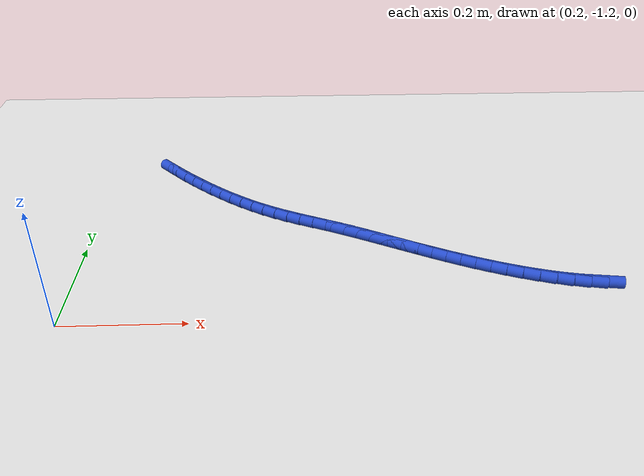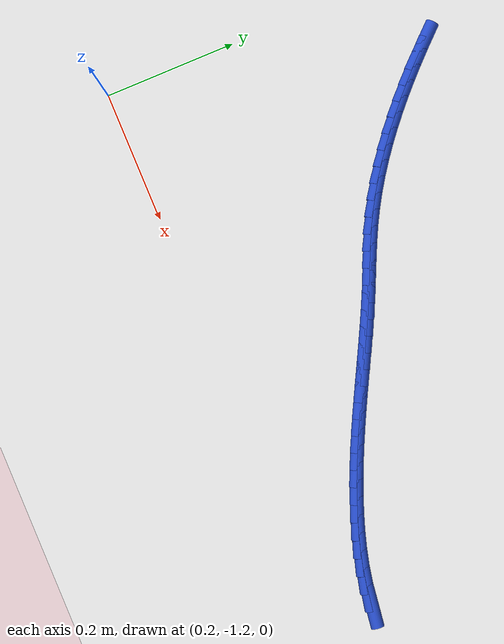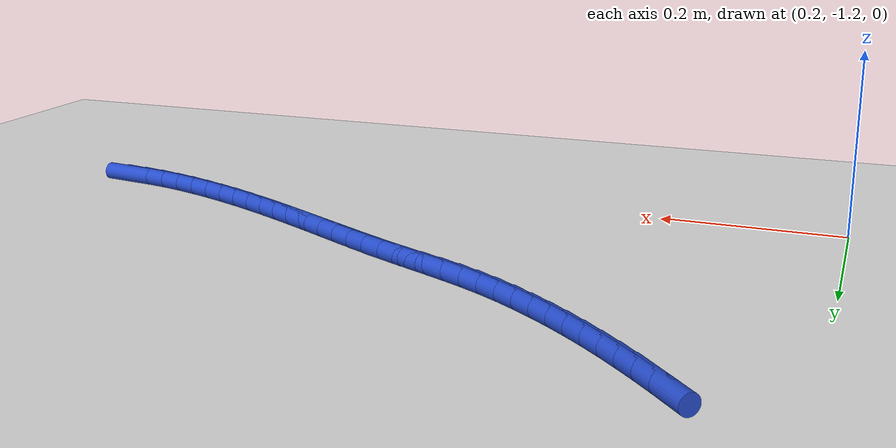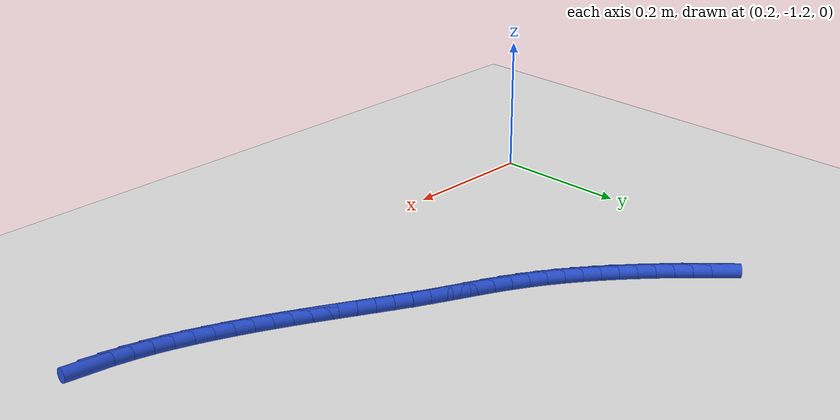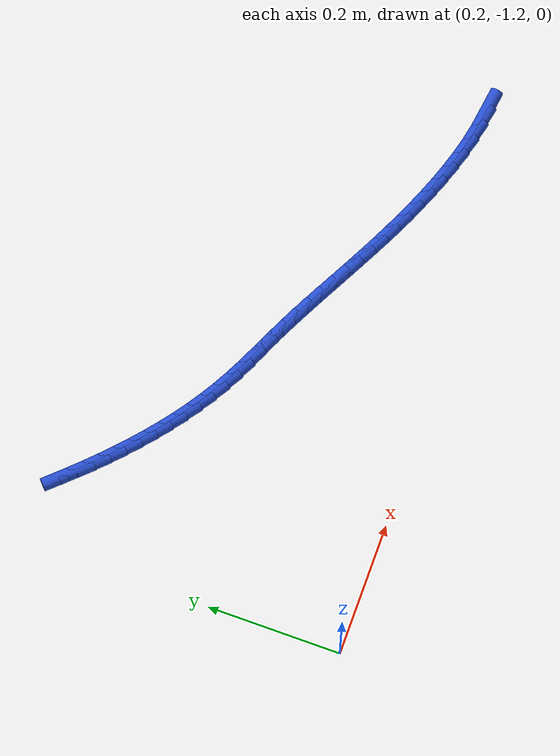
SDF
<sdf version="1.6">
 <world name="default">
  <model name="ground_plane">
   <static>1</static>
   <link name="link">
    <collision name="collision">
     <geometry><plane><normal>0 0 1</normal><size>100 100</size></plane></geometry>
     <surface><friction><ode><mu>100</mu><mu2>50</mu2></ode></friction></surface>
    </collision>
    <visual name="visual">
     <cast_shadows>0</cast_shadows>
     <geometry><plane><normal>0 0 1</normal><size>100 100</size></plane></geometry>
     <material>
      <script><uri>file://media/materials/scripts/gazebo.material</uri><name>Gazebo/WhiteGlow</name></script>
     </material>
    </visual>
   </link>
  </model>
  <model name="line">
   <link name="link_204">
    <pose>1.0408665517488378 -1.1295704536340878 0.01 0 1.57 -0.13651903813891184</pose>
    <collision name="collision">
     <geometry><cylinder><radius>0.01</radius><length>0.08</length></cylinder></geometry>
    </collision>
    <visual name="visual">
     <material>
      <script><name>Gazebo/Blue</name><uri>file://media/materials/scripts/gazebo.material</uri></script>
     </material>
     <geometry><cylinder><radius>0.01</radius><length>0.08</length></cylinder></geometry>
    </visual>
   </link>
   <link name="link_205">
    <pose>1.0153931209307339 -1.126071078493893 0.01 0 1.57 -0.19872860381731308</pose>
    <collision name="collision">
     <geometry><cylinder><radius>0.01</radius><length>0.08</length></cylinder></geometry>
    </collision>
    <visual name="visual">
     <material>
      <script><name>Gazebo/Blue</name><uri>file://media/materials/scripts/gazebo.material</uri></script>
     </material>
     <geometry><cylinder><radius>0.01</radius><length>0.08</length></cylinder></geometry>
    </visual>
   </link>
   <link name="link_206">
    <pose>0.9898148511856627 -1.1209199542306625 0.01 0 1.57 -0.2516796308192896</pose>
    <collision name="collision">
     <geometry><cylinder><radius>0.01</radius><length>0.08</length></cylinder></geometry>
    </collision>
    <visual name="visual">
     <material>
      <script><name>Gazebo/Blue</name><uri>file://media/materials/scripts/gazebo.material</uri></script>
     </material>
     <geometry><cylinder><radius>0.01</radius><length>0.08</length></cylinder></geometry>
    </visual>
   </link>
   <link name="link_207">
    <pose>0.9642819223540912 -1.1143546254520003 0.01 0 1.57 -0.2965459132099902</pose>
    <collision name="collision">
     <geometry><cylinder><radius>0.01</radius><length>0.08</length></cylinder></geometry>
    </collision>
    <visual name="visual">
     <material>
      <script><name>Gazebo/Blue</name><uri>file://media/materials/scripts/gazebo.material</uri></script>
     </material>
     <geometry><cylinder><radius>0.01</radius><length>0.08</length></cylinder></geometry>
    </visual>
   </link>
   <link name="link_208">
    <pose>0.93894451427649 -1.106612636765511 0.01 0 1.57 -0.33432043874342393</pose>
    <collision name="collision">
     <geometry><cylinder><radius>0.01</radius><length>0.08</length></cylinder></geometry>
    </collision>
    <visual name="visual">
     <material>
      <script><name>Gazebo/Blue</name><uri>file://media/materials/scripts/gazebo.material</uri></script>
     </material>
     <geometry><cylinder><radius>0.01</radius><length>0.08</length></cylinder></geometry>
    </visual>
   </link>
   <link name="link_209">
    <pose>0.9139528067933254 -1.0979315327787975 0.01 0 1.57 -0.36579936095412224</pose>
    <collision name="collision">
     <geometry><cylinder><radius>0.01</radius><length>0.08</length></cylinder></geometry>
    </collision>
    <visual name="visual">
     <material>
      <script><name>Gazebo/Blue</name><uri>file://media/materials/scripts/gazebo.material</uri></script>
     </material>
     <geometry><cylinder><radius>0.01</radius><length>0.08</length></cylinder></geometry>
    </visual>
   </link>
   <link name="link_210">
    <pose>0.8894565157331461 -1.0885485121547076 0.01 0 1.57 -0.3923715489740284</pose>
    <collision name="collision">
     <geometry><cylinder><radius>0.01</radius><length>0.08</length></cylinder></geometry>
    </collision>
    <visual name="visual">
     <material>
      <script><name>Gazebo/Blue</name><uri>file://media/materials/scripts/gazebo.material</uri></script>
     </material>
     <geometry><cylinder><radius>0.01</radius><length>0.08</length></cylinder></geometry>
    </visual>
   </link>
   <link name="link_211">
    <pose>0.8655372765400509 -1.0786500161272707 0.01 0 1.57 -0.41577416911843934</pose>
    <collision name="collision">
     <geometry><cylinder><radius>0.01</radius><length>0.08</length></cylinder></geometry>
    </collision>
    <visual name="visual">
     <material>
      <script><name>Gazebo/Blue</name><uri>file://media/materials/scripts/gazebo.material</uri></script>
     </material>
     <geometry><cylinder><radius>0.01</radius><length>0.08</length></cylinder></geometry>
    </visual>
   </link>
   <link name="link_212">
    <pose>0.8421375407662883 -1.0683187171792006 0.01 0 1.57 -0.43597856908285604</pose>
    <collision name="collision">
     <geometry><cylinder><radius>0.01</radius><length>0.08</length></cylinder></geometry>
    </collision>
    <visual name="visual">
     <material>
      <script><name>Gazebo/Blue</name><uri>file://media/materials/scripts/gazebo.material</uri></script>
     </material>
     <geometry><cylinder><radius>0.01</radius><length>0.08</length></cylinder></geometry>
    </visual>
   </link>
   <link name="link_213">
    <pose>0.8191827521900982 -1.05762460762277 0.01 0 1.57 -0.4527757368728454</pose>
    <collision name="collision">
     <geometry><cylinder><radius>0.01</radius><length>0.08</length></cylinder></geometry>
    </collision>
    <visual name="visual">
     <material>
      <script><name>Gazebo/Blue</name><uri>file://media/materials/scripts/gazebo.material</uri></script>
     </material>
     <geometry><cylinder><radius>0.01</radius><length>0.08</length></cylinder></geometry>
    </visual>
   </link>
   <link name="link_214">
    <pose>0.796598354589723 -1.0466376797702528 0.01 0 1.57 -0.4659948380799083</pose>
    <collision name="collision">
     <geometry><cylinder><radius>0.01</radius><length>0.08</length></cylinder></geometry>
    </collision>
    <visual name="visual">
     <material>
      <script><name>Gazebo/Blue</name><uri>file://media/materials/scripts/gazebo.material</uri></script>
     </material>
     <geometry><cylinder><radius>0.01</radius><length>0.08</length></cylinder></geometry>
    </visual>
   </link>
   <link name="link_215">
    <pose>0.7743097917434034 -1.0354279259339219 0.01 0 1.57 -0.4755015476986345</pose>
    <collision name="collision">
     <geometry><cylinder><radius>0.01</radius><length>0.08</length></cylinder></geometry>
    </collision>
    <visual name="visual">
     <material>
      <script><name>Gazebo/Blue</name><uri>file://media/materials/scripts/gazebo.material</uri></script>
     </material>
     <geometry><cylinder><radius>0.01</radius><length>0.08</length></cylinder></geometry>
    </visual>
   </link>
   <link name="link_216">
    <pose>0.7522425074293794 -1.0240653384260494 0.01 0 1.57 -0.48119610999230344</pose>
    <collision name="collision">
     <geometry><cylinder><radius>0.01</radius><length>0.08</length></cylinder></geometry>
    </collision>
    <visual name="visual">
     <material>
      <script><name>Gazebo/Blue</name><uri>file://media/materials/scripts/gazebo.material</uri></script>
     </material>
     <geometry><cylinder><radius>0.01</radius><length>0.08</length></cylinder></geometry>
    </visual>
   </link>
   <link name="link_217">
    <pose>0.7303219454258941 -1.0126199095589103 0.01 0 1.57 -0.48301167484162116</pose>
    <collision name="collision">
     <geometry><cylinder><radius>0.01</radius><length>0.08</length></cylinder></geometry>
    </collision>
    <visual name="visual">
     <material>
      <script><name>Gazebo/Blue</name><uri>file://media/materials/scripts/gazebo.material</uri></script>
     </material>
     <geometry><cylinder><radius>0.01</radius><length>0.08</length></cylinder></geometry>
    </visual>
   </link>
   <link name="link_218">
    <pose>0.7084735495111871 -1.0011616316447758 0.01 0 1.57 -0.4809133434241773</pose>
    <collision name="collision">
     <geometry><cylinder><radius>0.01</radius><length>0.08</length></cylinder></geometry>
    </collision>
    <visual name="visual">
     <material>
      <script><name>Gazebo/Blue</name><uri>file://media/materials/scripts/gazebo.material</uri></script>
     </material>
     <geometry><cylinder><radius>0.01</radius><length>0.08</length></cylinder></geometry>
    </visual>
   </link>
   <link name="link_219">
    <pose>0.6866227634635009 -0.9897604969959206 0.01 0 1.57 -0.4748982094256541</pose>
    <collision name="collision">
     <geometry><cylinder><radius>0.01</radius><length>0.08</length></cylinder></geometry>
    </collision>
    <visual name="visual">
     <material>
      <script><name>Gazebo/Blue</name><uri>file://media/materials/scripts/gazebo.material</uri></script>
     </material>
     <geometry><cylinder><radius>0.01</radius><length>0.08</length></cylinder></geometry>
    </visual>
   </link>
   <link name="link_220">
    <pose>0.6646950310610755 -0.9784864979246171 0.01 0 1.57 -0.4649965160104828</pose>
    <collision name="collision">
     <geometry><cylinder><radius>0.01</radius><length>0.08</length></cylinder></geometry>
    </collision>
    <visual name="visual">
     <material>
      <script><name>Gazebo/Blue</name><uri>file://media/materials/scripts/gazebo.material</uri></script>
     </material>
     <geometry><cylinder><radius>0.01</radius><length>0.08</length></cylinder></geometry>
    </visual>
   </link>
   <link name="link_221">
    <pose>0.6426157960821535 -0.9674096267431387 0.01 0 1.57 -0.4512738697598157</pose>
    <collision name="collision">
     <geometry><cylinder><radius>0.01</radius><length>0.08</length></cylinder></geometry>
    </collision>
    <visual name="visual">
     <material>
      <script><name>Gazebo/Blue</name><uri>file://media/materials/scripts/gazebo.material</uri></script>
     </material>
     <geometry><cylinder><radius>0.01</radius><length>0.08</length></cylinder></geometry>
    </visual>
   </link>
   <link name="link_222">
    <pose>0.6203105023049743 -0.9565998757637579 0.01 0 1.57 -0.4353237863563021</pose>
    <collision name="collision">
     <geometry><cylinder><radius>0.01</radius><length>0.08</length></cylinder></geometry>
    </collision>
    <visual name="visual">
     <material>
      <script><name>Gazebo/Blue</name><uri>file://media/materials/scripts/gazebo.material</uri></script>
     </material>
     <geometry><cylinder><radius>0.01</radius><length>0.08</length></cylinder></geometry>
    </visual>
   </link>
   <link name="link_223">
    <pose>0.5977270326714966 -0.9460967464166504 0.01 0 1.57 -0.42905007482364016</pose>
    <collision name="collision">
     <geometry><cylinder><radius>0.01</radius><length>0.08</length></cylinder></geometry>
    </collision>
    <visual name="visual">
     <material>
      <script><name>Gazebo/Blue</name><uri>file://media/materials/scripts/gazebo.material</uri></script>
     </material>
     <geometry><cylinder><radius>0.01</radius><length>0.08</length></cylinder></geometry>
    </visual>
   </link>
   <link name="link_224">
    <pose>0.5749924225499856 -0.9356963034523745 0.01 0 1.57 -0.4379888098289253</pose>
    <collision name="collision">
     <geometry><cylinder><radius>0.01</radius><length>0.08</length></cylinder></geometry>
    </collision>
    <visual name="visual">
     <material>
      <script><name>Gazebo/Blue</name><uri>file://media/materials/scripts/gazebo.material</uri></script>
     </material>
     <geometry><cylinder><radius>0.01</radius><length>0.08</length></cylinder></geometry>
    </visual>
   </link>
   <link name="link_225">
    <pose>0.5523195262910048 -0.9250779986984721 0.01 0 1.57 -0.4621660558577439</pose>
    <collision name="collision">
     <geometry><cylinder><radius>0.01</radius><length>0.08</length></cylinder></geometry>
    </collision>
    <visual name="visual">
     <material>
      <script><name>Gazebo/Blue</name><uri>file://media/materials/scripts/gazebo.material</uri></script>
     </material>
     <geometry><cylinder><radius>0.01</radius><length>0.08</length></cylinder></geometry>
    </visual>
   </link>
   <link name="link_226">
    <pose>0.5299217365348712 -0.9139205525412541 0.01 0 1.57 -0.5004919328793962</pose>
    <collision name="collision">
     <geometry><cylinder><radius>0.01</radius><length>0.08</length></cylinder></geometry>
    </collision>
    <visual name="visual">
     <material>
      <script><name>Gazebo/Blue</name><uri>file://media/materials/scripts/gazebo.material</uri></script>
     </material>
     <geometry><cylinder><radius>0.01</radius><length>0.08</length></cylinder></geometry>
    </visual>
   </link>
   <link name="link_227">
    <pose>0.5079966175126227 -0.9019287970269918 0.01 0 1.57 -0.542102924284516</pose>
    <collision name="collision">
     <geometry><cylinder><radius>0.01</radius><length>0.08</length></cylinder></geometry>
    </collision>
    <visual name="visual">
     <material>
      <script><name>Gazebo/Blue</name><uri>file://media/materials/scripts/gazebo.material</uri></script>
     </material>
     <geometry><cylinder><radius>0.01</radius><length>0.08</length></cylinder></geometry>
    </visual>
   </link>
   <link name="link_228">
    <pose>0.48659981677649383 -0.8890416799614089 0.01 0 1.57 -0.5811733454380184</pose>
    <collision name="collision">
     <geometry><cylinder><radius>0.01</radius><length>0.08</length></cylinder></geometry>
    </collision>
    <visual name="visual">
     <material>
      <script><name>Gazebo/Blue</name><uri>file://media/materials/scripts/gazebo.material</uri></script>
     </material>
     <geometry><cylinder><radius>0.01</radius><length>0.08</length></cylinder></geometry>
    </visual>
   </link>
   <link name="link_229">
    <pose>0.46571211225111514 -0.875321659366741 0.01 0 1.57 -0.6176149456144222</pose>
    <collision name="collision">
     <geometry><cylinder><radius>0.01</radius><length>0.08</length></cylinder></geometry>
    </collision>
    <visual name="visual">
     <material>
      <script><name>Gazebo/Blue</name><uri>file://media/materials/scripts/gazebo.material</uri></script>
     </material>
     <geometry><cylinder><radius>0.01</radius><length>0.08</length></cylinder></geometry>
    </visual>
   </link>
   <link name="link_230">
    <pose>0.4453136073987253 -0.8608323059059441 0.01 0 1.57 -0.6514246495760144</pose>
    <collision name="collision">
     <geometry><cylinder><radius>0.01</radius><length>0.08</length></cylinder></geometry>
    </collision>
    <visual name="visual">
     <material>
      <script><name>Gazebo/Blue</name><uri>file://media/materials/scripts/gazebo.material</uri></script>
     </material>
     <geometry><cylinder><radius>0.01</radius><length>0.08</length></cylinder></geometry>
    </visual>
   </link>
   <link name="link_231">
    <pose>0.4253844056815609 -0.8456371902419733 0.01 0 1.57 -0.6826248827534421</pose>
    <collision name="collision">
     <geometry><cylinder><radius>0.01</radius><length>0.08</length></cylinder></geometry>
    </collision>
    <visual name="visual">
     <material>
      <script><name>Gazebo/Blue</name><uri>file://media/materials/scripts/gazebo.material</uri></script>
     </material>
     <geometry><cylinder><radius>0.01</radius><length>0.08</length></cylinder></geometry>
    </visual>
   </link>
   <link name="link_232">
    <pose>0.4059046105618604 -0.8297998830377846 0.01 0 1.57 -0.7112563830238753</pose>
    <collision name="collision">
     <geometry><cylinder><radius>0.01</radius><length>0.08</length></cylinder></geometry>
    </collision>
    <visual name="visual">
     <material>
      <script><name>Gazebo/Blue</name><uri>file://media/materials/scripts/gazebo.material</uri></script>
     </material>
     <geometry><cylinder><radius>0.01</radius><length>0.08</length></cylinder></geometry>
    </visual>
   </link>
   <link name="link_233">
    <pose>0.3868543255018605 -0.8133839549563336 0.01 0 1.57 -0.7373717558918838</pose>
    <collision name="collision">
     <geometry><cylinder><radius>0.01</radius><length>0.08</length></cylinder></geometry>
    </collision>
    <visual name="visual">
     <material>
      <script><name>Gazebo/Blue</name><uri>file://media/materials/scripts/gazebo.material</uri></script>
     </material>
     <geometry><cylinder><radius>0.01</radius><length>0.08</length></cylinder></geometry>
    </visual>
   </link>
   <link name="link_234">
    <pose>0.3682136539637998 -0.7964529766605764 0.01 0 1.57 -0.7610298884189584</pose>
    <collision name="collision">
     <geometry><cylinder><radius>0.01</radius><length>0.08</length></cylinder></geometry>
    </collision>
    <visual name="visual">
     <material>
      <script><name>Gazebo/Blue</name><uri>file://media/materials/scripts/gazebo.material</uri></script>
     </material>
     <geometry><cylinder><radius>0.01</radius><length>0.08</length></cylinder></geometry>
    </visual>
   </link>
   <link name="link_235">
    <pose>0.3499626994099151 -0.7790705188134679 0.01 0 1.57 -0.7822912250376887</pose>
    <collision name="collision">
     <geometry><cylinder><radius>0.01</radius><length>0.08</length></cylinder></geometry>
    </collision>
    <visual name="visual">
     <material>
      <script><name>Gazebo/Blue</name><uri>file://media/materials/scripts/gazebo.material</uri></script>
     </material>
     <geometry><cylinder><radius>0.01</radius><length>0.08</length></cylinder></geometry>
    </visual>
   </link>
   <link name="link_236">
    <pose>0.33208156530244354 -0.7613001520779635 0.01 0 1.57 -0.8014825821135957</pose>
    <collision name="collision">
     <geometry><cylinder><radius>0.01</radius><length>0.08</length></cylinder></geometry>
    </collision>
    <visual name="visual">
     <material>
      <script><name>Gazebo/Blue</name><uri>file://media/materials/scripts/gazebo.material</uri></script>
     </material>
     <geometry><cylinder><radius>0.01</radius><length>0.08</length></cylinder></geometry>
    </visual>
   </link>
   <link name="link_237">
    <pose>0.31455354357767573 -0.7431990064826489 0.01 0 1.57 -0.8202840801284251</pose>
    <collision name="collision">
     <geometry><cylinder><radius>0.01</radius><length>0.08</length></cylinder></geometry>
    </collision>
    <visual name="visual">
     <material>
      <script><name>Gazebo/Blue</name><uri>file://media/materials/scripts/gazebo.material</uri></script>
     </material>
     <geometry><cylinder><radius>0.01</radius><length>0.08</length></cylinder></geometry>
    </visual>
   </link>
  </model>
 </world>
</sdf>
